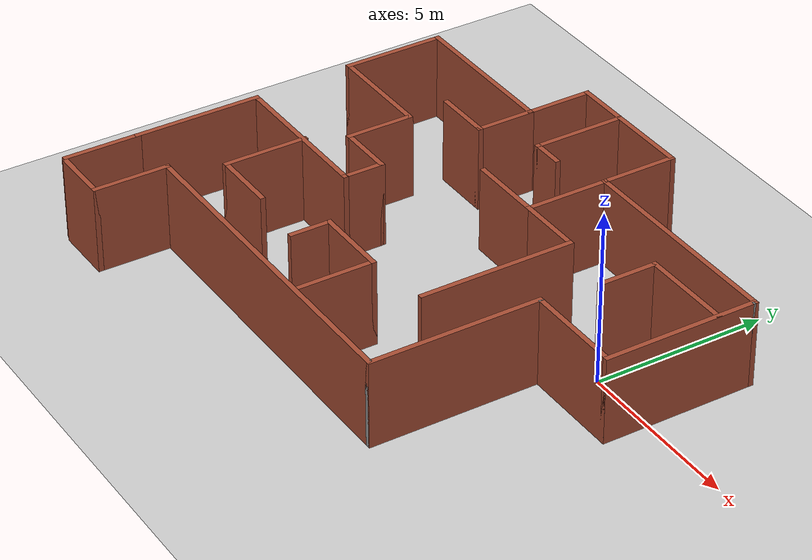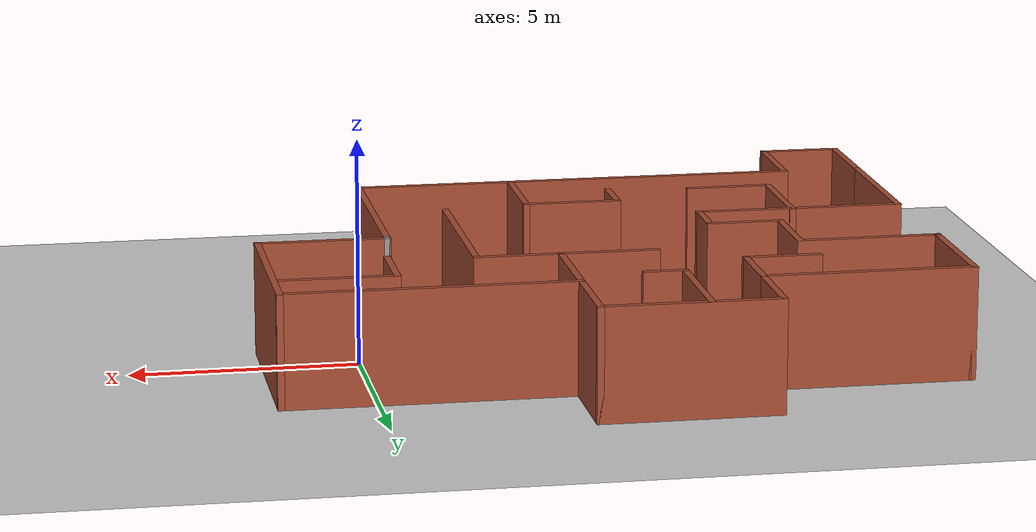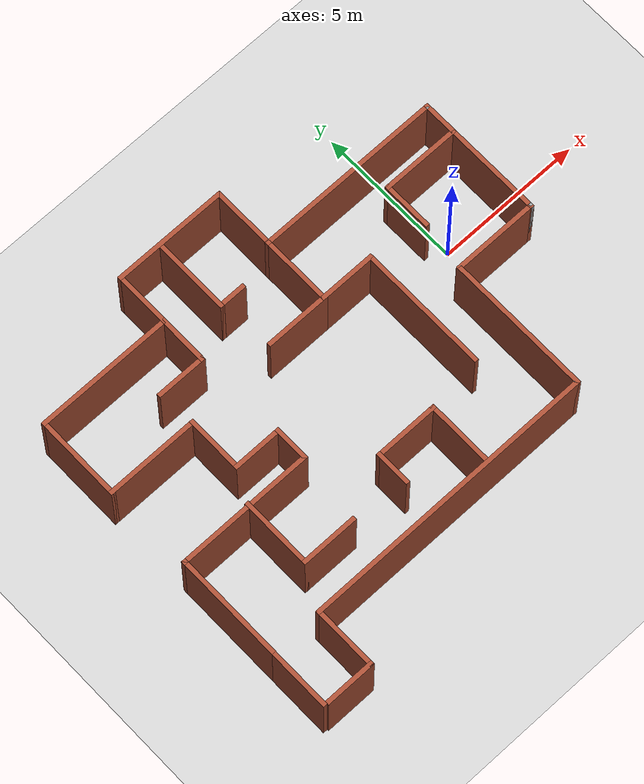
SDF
<sdf version="1.7">
 <world name="default">
  <light name="sun" type="directional">
   <pose>0 0 10 0 -0 0</pose>
   <diffuse>0.8 0.8 0.8 1</diffuse>
   <specular>0.2 0.2 0.2 1</specular>
   <attenuation>
    <range>1000</range>
    <constant>0.9</constant>
    <linear>0.01</linear>
    <quadratic>0.001</quadratic>
   </attenuation>
   <direction>-0.5 0.1 -0.9</direction>
   <spot><inner_angle>0</inner_angle><outer_angle>0</outer_angle><falloff>0</falloff></spot>
  </light>
  <model name="ground_plane">
   <static>1</static>
   <link name="link">
    <collision name="collision">
     <geometry><plane><normal>0 0 1</normal><size>100 100</size></plane></geometry>
     <surface>
      <contact><collide_bitmask>65535</collide_bitmask></contact>
      <friction><ode><mu>100</mu><mu2>50</mu2></ode></friction>
     </surface>
    </collision>
    <visual name="visual">
     <cast_shadows>0</cast_shadows>
     <geometry><plane><normal>0 0 1</normal><size>100 100</size></plane></geometry>
     <material>
      <script><uri>file://media/materials/scripts/gazebo.material</uri><name>Gazebo/Grey</name></script>
     </material>
    </visual>
   </link>
  </model>
  <gravity>0 0 -9.8</gravity>
  <magnetic_field>6e-06 2.3e-05 -4.2e-05</magnetic_field>
  <atmosphere type="adiabatic"/>
  <physics type="ode">
   <max_step_size>0.001</max_step_size>
   <real_time_factor>1</real_time_factor>
   <real_time_update_rate>1000</real_time_update_rate>
  </physics>
  <scene><ambient>0.4 0.4 0.4 1</ambient><background>0.7 0.7 0.7 1</background><shadows>1</shadows></scene>
  <spherical_coordinates>
   <surface_model>EARTH_WGS84</surface_model>
   <latitude_deg>0</latitude_deg>
   <longitude_deg>0</longitude_deg>
   <elevation>0</elevation>
   <heading_deg>0</heading_deg>
  </spherical_coordinates>
  <model name="world.world">
   <pose>-5.34695 -1.48497 0 0 -0 0</pose>
   <link name="Wall_10">
    <collision name="Wall_10_Collision">
     <geometry><box><size>3 0.15 2.5</size></box></geometry>
     <pose>0 0 1.25 0 -0 0</pose>
    </collision>
    <visual name="Wall_10_Visual">
     <pose>0 0 1.25 0 -0 0</pose>
     <geometry><box><size>3 0.15 2.5</size></box></geometry>
     <material>
      <script><uri>file://media/materials/scripts/gazebo.material</uri><name>Gazebo/Bricks</name></script>
      <ambient>1 1 1 1</ambient>
     </material>
     <meta><layer>0</layer></meta>
    </visual>
    <pose>5.975 0.25 0 0 -0 0</pose>
   </link>
   <link name="Wall_11">
    <collision name="Wall_11_Collision">
     <geometry><box><size>0.15 0.15 2.5</size></box></geometry>
     <pose>0 0 1.25 0 -0 0</pose>
    </collision>
    <visual name="Wall_11_Visual">
     <pose>0 0 1.25 0 -0 0</pose>
     <geometry><box><size>0.15 0.15 2.5</size></box></geometry>
     <material>
      <script><uri>file://media/materials/scripts/gazebo.material</uri><name>Gazebo/Grey</name></script>
      <ambient>1 1 1 1</ambient>
     </material>
     <meta><layer>0</layer></meta>
    </visual>
    <pose>7.4 0.25 0 0 -0 0</pose>
   </link>
   <link name="Wall_12">
    <collision name="Wall_12_Collision">
     <geometry><box><size>4.5 0.15 2.5</size></box></geometry>
     <pose>0 0 1.25 0 -0 0</pose>
    </collision>
    <visual name="Wall_12_Visual">
     <pose>0 0 1.25 0 -0 0</pose>
     <geometry><box><size>4.5 0.15 2.5</size></box></geometry>
     <material>
      <script><uri>file://media/materials/scripts/gazebo.material</uri><name>Gazebo/Bricks</name></script>
      <ambient>1 1 1 1</ambient>
     </material>
     <meta><layer>0</layer></meta>
    </visual>
    <pose>7.4 2.425 0 0 -0 1.5708</pose>
   </link>
   <link name="Wall_13">
    <collision name="Wall_13_Collision">
     <geometry><box><size>0.15 0.15 2.5</size></box></geometry>
     <pose>0 0 1.25 0 -0 0</pose>
    </collision>
    <visual name="Wall_13_Visual">
     <pose>0 0 1.25 0 -0 0</pose>
     <geometry><box><size>0.15 0.15 2.5</size></box></geometry>
     <material>
      <script><uri>file://media/materials/scripts/gazebo.material</uri><name>Gazebo/Grey</name></script>
      <ambient>1 1 1 1</ambient>
     </material>
     <meta><layer>0</layer></meta>
    </visual>
    <pose>7.4 4.6 0 0 -0 0</pose>
   </link>
   <link name="Wall_14">
    <collision name="Wall_14_Collision">
     <geometry><box><size>6.5 0.15 2.5</size></box></geometry>
     <pose>0 0 1.25 0 -0 0</pose>
    </collision>
    <visual name="Wall_14_Visual">
     <pose>0 0 1.25 0 -0 0</pose>
     <geometry><box><size>6.5 0.15 2.5</size></box></geometry>
     <material>
      <script><uri>file://media/materials/scripts/gazebo.material</uri><name>Gazebo/Bricks</name></script>
      <ambient>1 1 1 1</ambient>
     </material>
     <meta><layer>0</layer></meta>
    </visual>
    <pose>4.225 4.6 0 0 -0 3.14159</pose>
   </link>
   <link name="Wall_15">
    <collision name="Wall_15_Collision">
     <geometry><box><size>2.25 0.15 2.5</size></box></geometry>
     <pose>0 0 1.25 0 -0 0</pose>
    </collision>
    <visual name="Wall_15_Visual">
     <pose>0 0 1.25 0 -0 0</pose>
     <geometry><box><size>2.25 0.15 2.5</size></box></geometry>
     <material>
      <script><uri>file://media/materials/scripts/gazebo.material</uri><name>Gazebo/Bricks</name></script>
      <ambient>1 1 1 1</ambient>
     </material>
     <meta><layer>0</layer></meta>
    </visual>
    <pose>1.05 5.65 0 0 -0 1.5708</pose>
   </link>
   <link name="Wall_16">
    <collision name="Wall_16_Collision">
     <geometry><box><size>4 0.15 2.5</size></box></geometry>
     <pose>0 0 1.25 0 -0 0</pose>
    </collision>
    <visual name="Wall_16_Visual">
     <pose>0 0 1.25 0 -0 0</pose>
     <geometry><box><size>4 0.15 2.5</size></box></geometry>
     <material>
      <script><uri>file://media/materials/scripts/gazebo.material</uri><name>Gazebo/Bricks</name></script>
      <ambient>1 1 1 1</ambient>
     </material>
     <meta><layer>0</layer></meta>
    </visual>
    <pose>-0.875 6.7 0 0 -0 3.14159</pose>
   </link>
   <link name="Wall_17">
    <collision name="Wall_17_Collision">
     <geometry><box><size>2 0.15 2.5</size></box></geometry>
     <pose>0 0 1.25 0 -0 0</pose>
    </collision>
    <visual name="Wall_17_Visual">
     <pose>0 0 1.25 0 -0 0</pose>
     <geometry><box><size>2 0.15 2.5</size></box></geometry>
     <material>
      <script><uri>file://media/materials/scripts/gazebo.material</uri><name>Gazebo/Bricks</name></script>
      <ambient>1 1 1 1</ambient>
     </material>
     <meta><layer>0</layer></meta>
    </visual>
    <pose>-2.8 5.775 0 0 -0 -1.5708</pose>
   </link>
   <link name="Wall_18">
    <collision name="Wall_18_Collision">
     <geometry><box><size>4.75 0.15 2.5</size></box></geometry>
     <pose>0 0 1.25 0 -0 0</pose>
    </collision>
    <visual name="Wall_18_Visual">
     <pose>0 0 1.25 0 -0 0</pose>
     <geometry><box><size>4.75 0.15 2.5</size></box></geometry>
     <material>
      <script><uri>file://media/materials/scripts/gazebo.material</uri><name>Gazebo/Bricks</name></script>
      <ambient>1 1 1 1</ambient>
     </material>
     <meta><layer>0</layer></meta>
    </visual>
    <pose>-5.1 4.85 0 0 -0 3.14159</pose>
   </link>
   <link name="Wall_19">
    <collision name="Wall_19_Collision">
     <geometry><box><size>3 0.15 2.5</size></box></geometry>
     <pose>0 0 1.25 0 -0 0</pose>
    </collision>
    <visual name="Wall_19_Visual">
     <pose>0 0 1.25 0 -0 0</pose>
     <geometry><box><size>3 0.15 2.5</size></box></geometry>
     <material>
      <script><uri>file://media/materials/scripts/gazebo.material</uri><name>Gazebo/Bricks</name></script>
      <ambient>1 1 1 1</ambient>
     </material>
     <meta><layer>0</layer></meta>
    </visual>
    <pose>-7.4 3.425 0 0 -0 -1.5708</pose>
   </link>
   <link name="Wall_20">
    <collision name="Wall_20_Collision">
     <geometry><box><size>3.25 0.15 2.5</size></box></geometry>
     <pose>0 0 1.25 0 -0 0</pose>
    </collision>
    <visual name="Wall_20_Visual">
     <pose>0 0 1.25 0 -0 0</pose>
     <geometry><box><size>3.25 0.15 2.5</size></box></geometry>
     <material>
      <script><uri>file://media/materials/scripts/gazebo.material</uri><name>Gazebo/Bricks</name></script>
      <ambient>1 1 1 1</ambient>
     </material>
     <meta><layer>0</layer></meta>
    </visual>
    <pose>-5.85 2 0 0 -0 0</pose>
   </link>
   <link name="Wall_21">
    <collision name="Wall_21_Collision">
     <geometry><box><size>2 0.15 2.5</size></box></geometry>
     <pose>0 0 1.25 0 -0 0</pose>
    </collision>
    <visual name="Wall_21_Visual">
     <pose>0 0 1.25 0 -0 0</pose>
     <geometry><box><size>2 0.15 2.5</size></box></geometry>
     <material>
      <script><uri>file://media/materials/scripts/gazebo.material</uri><name>Gazebo/Bricks</name></script>
      <ambient>1 1 1 1</ambient>
     </material>
     <meta><layer>0</layer></meta>
    </visual>
    <pose>-4.3 1.075 0 0 -0 -1.5708</pose>
   </link>
   <link name="Wall_22">
    <collision name="Wall_22_Collision">
     <geometry><box><size>1.75 0.15 2.5</size></box></geometry>
     <pose>0 0 1.25 0 -0 0</pose>
    </collision>
    <visual name="Wall_22_Visual">
     <pose>0 0 1.25 0 -0 0</pose>
     <geometry><box><size>1.75 0.15 2.5</size></box></geometry>
     <material>
      <script><uri>file://media/materials/scripts/gazebo.material</uri><name>Gazebo/Bricks</name></script>
      <ambient>1 1 1 1</ambient>
     </material>
     <meta><layer>0</layer></meta>
    </visual>
    <pose>-3.5 0.15 0 0 -0 0</pose>
   </link>
   <link name="Wall_23">
    <collision name="Wall_23_Collision">
     <geometry><box><size>1.25 0.15 2.5</size></box></geometry>
     <pose>0 0 1.25 0 -0 0</pose>
    </collision>
    <visual name="Wall_23_Visual">
     <pose>0 0 1.25 0 -0 0</pose>
     <geometry><box><size>1.25 0.15 2.5</size></box></geometry>
     <material>
      <script><uri>file://media/materials/scripts/gazebo.material</uri><name>Gazebo/Bricks</name></script>
      <ambient>1 1 1 1</ambient>
     </material>
     <meta><layer>0</layer></meta>
    </visual>
    <pose>-2.7 -0.4 0 0 -0 -1.5708</pose>
   </link>
   <link name="Wall_24">
    <collision name="Wall_24_Collision">
     <geometry><box><size>4.75 0.15 2.5</size></box></geometry>
     <pose>0 0 1.25 0 -0 0</pose>
    </collision>
    <visual name="Wall_24_Visual">
     <pose>0 0 1.25 0 -0 0</pose>
     <geometry><box><size>4.75 0.15 2.5</size></box></geometry>
     <material>
      <script><uri>file://media/materials/scripts/gazebo.material</uri><name>Gazebo/Bricks</name></script>
      <ambient>1 1 1 1</ambient>
     </material>
     <meta><layer>0</layer></meta>
    </visual>
    <pose>-5 -0.95 0 0 -0 3.14159</pose>
   </link>
   <link name="Wall_25">
    <collision name="Wall_25_Collision">
     <geometry><box><size>3.75 0.15 2.5</size></box></geometry>
     <pose>0 0 1.25 0 -0 0</pose>
    </collision>
    <visual name="Wall_25_Visual">
     <pose>0 0 1.25 0 -0 0</pose>
     <geometry><box><size>3.75 0.15 2.5</size></box></geometry>
     <material>
      <script><uri>file://media/materials/scripts/gazebo.material</uri><name>Gazebo/Bricks</name></script>
      <ambient>1 1 1 1</ambient>
     </material>
     <meta><layer>0</layer></meta>
    </visual>
    <pose>-7.3 -2.75 0 0 -0 -1.5708</pose>
   </link>
   <link name="Wall_26">
    <collision name="Wall_26_Collision">
     <geometry><box><size>2.25 0.15 2.5</size></box></geometry>
     <pose>0 0 1.25 0 -0 0</pose>
    </collision>
    <visual name="Wall_26_Visual">
     <pose>0 0 1.25 0 -0 0</pose>
     <geometry><box><size>2.25 0.15 2.5</size></box></geometry>
     <material>
      <script><uri>file://media/materials/scripts/gazebo.material</uri><name>Gazebo/Bricks</name></script>
      <ambient>1 1 1 1</ambient>
     </material>
     <meta><layer>0</layer></meta>
    </visual>
    <pose>-7.3 -5.6 0 0 -0 -1.5708</pose>
   </link>
   <link name="Wall_28">
    <collision name="Wall_28_Collision">
     <geometry><box><size>2.25 0.15 2.5</size></box></geometry>
     <pose>0 0 1.25 0 -0 0</pose>
    </collision>
    <visual name="Wall_28_Visual">
     <pose>0 0 1.25 0 -0 0</pose>
     <geometry><box><size>2.25 0.15 2.5</size></box></geometry>
     <material>
      <script><uri>file://media/materials/scripts/gazebo.material</uri><name>Gazebo/Bricks</name></script>
      <ambient>1 1 1 1</ambient>
     </material>
     <meta><layer>0</layer></meta>
    </visual>
    <pose>-5.55 -5.65 0 0 -0 -1.5708</pose>
   </link>
   <link name="Wall_29">
    <collision name="Wall_29_Collision">
     <geometry><box><size>1.75 0.15 2.5</size></box></geometry>
     <pose>0 0 1.25 0 -0 0</pose>
    </collision>
    <visual name="Wall_29_Visual">
     <pose>0 0 1.25 0 -0 0</pose>
     <geometry><box><size>1.75 0.15 2.5</size></box></geometry>
     <material>
      <script><uri>file://media/materials/scripts/gazebo.material</uri><name>Gazebo/Bricks</name></script>
      <ambient>1 1 1 1</ambient>
     </material>
     <meta><layer>0</layer></meta>
    </visual>
    <pose>-6.35 -6.7 0 0 -0 3.14159</pose>
   </link>
   <link name="Wall_31">
    <collision name="Wall_31_Collision">
     <geometry><box><size>2.25 0.15 2.5</size></box></geometry>
     <pose>0 0 1.25 0 -0 0</pose>
    </collision>
    <visual name="Wall_31_Visual">
     <pose>0 0 1.25 0 -0 0</pose>
     <geometry><box><size>2.25 0.15 2.5</size></box></geometry>
     <material>
      <script><uri>file://media/materials/scripts/gazebo.material</uri><name>Gazebo/Bricks</name></script>
      <ambient>1 1 1 1</ambient>
     </material>
     <meta><layer>0</layer></meta>
    </visual>
    <pose>1.00599 -3.40582 0 0 -0 1.5708</pose>
   </link>
   <link name="Wall_32">
    <collision name="Wall_32_Collision">
     <geometry><box><size>2.25 0.15 2.5</size></box></geometry>
     <pose>0 0 1.25 0 -0 0</pose>
    </collision>
    <visual name="Wall_32_Visual">
     <pose>0 0 1.25 0 -0 0</pose>
     <geometry><box><size>2.25 0.15 2.5</size></box></geometry>
     <material>
      <script><uri>file://media/materials/scripts/gazebo.material</uri><name>Gazebo/Bricks</name></script>
      <ambient>1 1 1 1</ambient>
     </material>
     <meta><layer>0</layer></meta>
    </visual>
    <pose>-0.044013 -2.35582 0 0 -0 3.14159</pose>
   </link>
   <link name="Wall_33">
    <collision name="Wall_33_Collision">
     <geometry><box><size>1.25 0.15 2.5</size></box></geometry>
     <pose>0 0 1.25 0 -0 0</pose>
    </collision>
    <visual name="Wall_33_Visual">
     <pose>0 0 1.25 0 -0 0</pose>
     <geometry><box><size>1.25 0.15 2.5</size></box></geometry>
     <material>
      <script><uri>file://media/materials/scripts/gazebo.material</uri><name>Gazebo/Bricks</name></script>
      <ambient>1 1 1 1</ambient>
     </material>
     <meta><layer>0</layer></meta>
    </visual>
    <pose>-1.09401 -2.90582 0 0 -0 -1.5708</pose>
   </link>
   <link name="Wall_35">
    <collision name="Wall_35_Collision">
     <geometry><box><size>1.75 0.15 2.5</size></box></geometry>
     <pose>0 0 1.25 0 -0 0</pose>
    </collision>
    <visual name="Wall_35_Visual">
     <pose>0 0 1.25 0 -0 0</pose>
     <geometry><box><size>1.75 0.15 2.5</size></box></geometry>
     <material>
      <script><uri>file://media/materials/scripts/gazebo.material</uri><name>Gazebo/Bricks</name></script>
      <ambient>1 1 1 1</ambient>
     </material>
     <meta><layer>0</layer></meta>
    </visual>
    <pose>-2.8 4.05 0 0 -0 -1.5708</pose>
   </link>
   <link name="Wall_36">
    <collision name="Wall_36_Collision">
     <geometry><box><size>1.75 0.15 2.5</size></box></geometry>
     <pose>0 0 1.25 0 -0 0</pose>
    </collision>
    <visual name="Wall_36_Visual">
     <pose>0 0 1.25 0 -0 0</pose>
     <geometry><box><size>1.75 0.15 2.5</size></box></geometry>
     <material>
      <script><uri>file://media/materials/scripts/gazebo.material</uri><name>Gazebo/Bricks</name></script>
      <ambient>1 1 1 1</ambient>
     </material>
     <meta><layer>0</layer></meta>
    </visual>
    <pose>-3.6 3.25 0 0 -0 3.14159</pose>
   </link>
   <link name="Wall_38">
    <collision name="Wall_38_Collision">
     <geometry><box><size>2.75 0.15 2.5</size></box></geometry>
     <pose>0 0 1.25 0 -0 0</pose>
    </collision>
    <visual name="Wall_38_Visual">
     <pose>0 0 1.25 0 -0 0</pose>
     <geometry><box><size>2.75 0.15 2.5</size></box></geometry>
     <material>
      <script><uri>file://media/materials/scripts/gazebo.material</uri><name>Gazebo/Bricks</name></script>
      <ambient>1 1 1 1</ambient>
     </material>
     <meta><layer>0</layer></meta>
    </visual>
    <pose>6.08333 3.50178 0 0 -0 3.14159</pose>
   </link>
   <link name="Wall_40">
    <collision name="Wall_40_Collision">
     <geometry><box><size>1.75 0.15 2.5</size></box></geometry>
     <pose>0 0 1.25 0 -0 0</pose>
    </collision>
    <visual name="Wall_40_Visual">
     <pose>0 0 1.25 0 -0 0</pose>
     <geometry><box><size>1.75 0.15 2.5</size></box></geometry>
     <material>
      <script><uri>file://media/materials/scripts/gazebo.material</uri><name>Gazebo/Bricks</name></script>
      <ambient>1 1 1 1</ambient>
     </material>
     <meta><layer>0</layer></meta>
    </visual>
    <pose>4.78334 2.70178 0 0 -0 -1.5708</pose>
   </link>
   <link name="Wall_42">
    <collision name="Wall_42_Collision">
     <geometry><box><size>2.5 0.15 2.5</size></box></geometry>
     <pose>0 0 1.25 0 -0 0</pose>
    </collision>
    <visual name="Wall_42_Visual">
     <pose>0 0 1.25 0 -0 0</pose>
     <geometry><box><size>2.5 0.15 2.5</size></box></geometry>
     <material>
      <script><uri>file://media/materials/scripts/gazebo.material</uri><name>Gazebo/Bricks</name></script>
      <ambient>1 1 1 1</ambient>
     </material>
     <meta><layer>0</layer></meta>
    </visual>
    <pose>1.05 3.425 0 0 -0 -1.5708</pose>
   </link>
   <link name="Wall_43">
    <collision name="Wall_43_Collision">
     <geometry><box><size>2 0.15 2.5</size></box></geometry>
     <pose>0 0 1.25 0 -0 0</pose>
    </collision>
    <visual name="Wall_43_Visual">
     <pose>0 0 1.25 0 -0 0</pose>
     <geometry><box><size>2 0.15 2.5</size></box></geometry>
     <material>
      <script><uri>file://media/materials/scripts/gazebo.material</uri><name>Gazebo/Bricks</name></script>
      <ambient>1 1 1 1</ambient>
     </material>
     <meta><layer>0</layer></meta>
    </visual>
    <pose>1.975 2.25 0 0 -0 0</pose>
   </link>
   <link name="Wall_44">
    <collision name="Wall_44_Collision">
     <geometry><box><size>4.5 0.15 2.5</size></box></geometry>
     <pose>0 0 1.25 0 -0 0</pose>
    </collision>
    <visual name="Wall_44_Visual">
     <pose>0 0 1.25 0 -0 0</pose>
     <geometry><box><size>4.5 0.15 2.5</size></box></geometry>
     <material>
      <script><uri>file://media/materials/scripts/gazebo.material</uri><name>Gazebo/Bricks</name></script>
      <ambient>1 1 1 1</ambient>
     </material>
     <meta><layer>0</layer></meta>
    </visual>
    <pose>2.9 0.075 0 0 -0 -1.5708</pose>
   </link>
   <link name="Wall_46">
    <collision name="Wall_46_Collision">
     <geometry><box><size>2.5 0.15 2.5</size></box></geometry>
     <pose>0 0 1.25 0 -0 0</pose>
    </collision>
    <visual name="Wall_46_Visual">
     <pose>0 0 1.25 0 -0 0</pose>
     <geometry><box><size>2.5 0.15 2.5</size></box></geometry>
     <material>
      <script><uri>file://media/materials/scripts/gazebo.material</uri><name>Gazebo/Bricks</name></script>
      <ambient>1 1 1 1</ambient>
     </material>
     <meta><layer>0</layer></meta>
    </visual>
    <pose>-4.83302 -2.07762 0 0 -0 -1.5708</pose>
   </link>
   <link name="Wall_47">
    <collision name="Wall_47_Collision">
     <geometry><box><size>2 0.15 2.5</size></box></geometry>
     <pose>0 0 1.25 0 -0 0</pose>
    </collision>
    <visual name="Wall_47_Visual">
     <pose>0 0 1.25 0 -0 0</pose>
     <geometry><box><size>2 0.15 2.5</size></box></geometry>
     <material>
      <script><uri>file://media/materials/scripts/gazebo.material</uri><name>Gazebo/Bricks</name></script>
      <ambient>1 1 1 1</ambient>
     </material>
     <meta><layer>0</layer></meta>
    </visual>
    <pose>-3.90802 -3.25262 0 0 -0 0</pose>
   </link>
   <link name="Wall_49">
    <collision name="Wall_49_Collision">
     <geometry><box><size>2.25 0.15 2.5</size></box></geometry>
     <pose>0 0 1.25 0 -0 0</pose>
    </collision>
    <visual name="Wall_49_Visual">
     <pose>0 0 1.25 0 -0 0</pose>
     <geometry><box><size>2.25 0.15 2.5</size></box></geometry>
     <material>
      <script><uri>file://media/materials/scripts/gazebo.material</uri><name>Gazebo/Bricks</name></script>
      <ambient>1 1 1 1</ambient>
     </material>
     <meta><layer>0</layer></meta>
    </visual>
    <pose>-0 2.25 0 0 -0 3.14159</pose>
   </link>
   <link name="Wall_51">
    <collision name="Wall_51_Collision">
     <geometry><box><size>2.75 0.15 2.5</size></box></geometry>
     <pose>0 0 1.25 0 -0 0</pose>
    </collision>
    <visual name="Wall_51_Visual">
     <pose>0 0 1.25 0 -0 0</pose>
     <geometry><box><size>2.75 0.15 2.5</size></box></geometry>
     <material>
      <script><uri>file://media/materials/scripts/gazebo.material</uri><name>Gazebo/Bricks</name></script>
      <ambient>1 1 1 1</ambient>
     </material>
     <meta><layer>0</layer></meta>
    </visual>
    <pose>-1.28075 5.39458 0 0 -0 -1.5708</pose>
   </link>
   <link name="Wall_52">
    <collision name="Wall_52_Collision">
     <geometry><box><size>1 0.15 2.5</size></box></geometry>
     <pose>0 0 1.25 0 -0 0</pose>
    </collision>
    <visual name="Wall_52_Visual">
     <pose>0 0 1.25 0 -0 0</pose>
     <geometry><box><size>1 0.15 2.5</size></box></geometry>
     <material>
      <script><uri>file://media/materials/scripts/gazebo.material</uri><name>Gazebo/Bricks</name></script>
      <ambient>1 1 1 1</ambient>
     </material>
     <meta><layer>0</layer></meta>
    </visual>
    <pose>-0.855749 4.09458 0 0 -0 0</pose>
   </link>
   <link name="Wall_6">
    <collision name="Wall_6_Collision">
     <geometry><box><size>10.25 0.15 2.5</size></box></geometry>
     <pose>0 0 1.25 0 -0 0</pose>
    </collision>
    <visual name="Wall_6_Visual">
     <pose>0 0 1.25 0 -0 0</pose>
     <geometry><box><size>10.25 0.15 2.5</size></box></geometry>
     <material>
      <script><uri>file://media/materials/scripts/gazebo.material</uri><name>Gazebo/Bricks</name></script>
      <ambient>1 1 1 1</ambient>
     </material>
     <meta><layer>0</layer></meta>
    </visual>
    <pose>-0.5 -4.6 0 0 -0 0</pose>
   </link>
   <link name="Wall_7">
    <collision name="Wall_7_Collision">
     <geometry><box><size>0.15 0.15 2.5</size></box></geometry>
     <pose>0 0 1.25 0 -0 0</pose>
    </collision>
    <visual name="Wall_7_Visual">
     <pose>0 0 1.25 0 -0 0</pose>
     <geometry><box><size>0.15 0.15 2.5</size></box></geometry>
     <material>
      <script><uri>file://media/materials/scripts/gazebo.material</uri><name>Gazebo/Grey</name></script>
      <ambient>1 1 1 1</ambient>
     </material>
     <meta><layer>0</layer></meta>
    </visual>
    <pose>4.55 -4.6 0 0 -0 0</pose>
   </link>
   <link name="Wall_8">
    <collision name="Wall_8_Collision">
     <geometry><box><size>5 0.15 2.5</size></box></geometry>
     <pose>0 0 1.25 0 -0 0</pose>
    </collision>
    <visual name="Wall_8_Visual">
     <pose>0 0 1.25 0 -0 0</pose>
     <geometry><box><size>5 0.15 2.5</size></box></geometry>
     <material>
      <script><uri>file://media/materials/scripts/gazebo.material</uri><name>Gazebo/Bricks</name></script>
      <ambient>1 1 1 1</ambient>
     </material>
     <meta><layer>0</layer></meta>
    </visual>
    <pose>4.55 -2.175 0 0 -0 1.5708</pose>
   </link>
   <link name="Wall_9">
    <collision name="Wall_9_Collision">
     <geometry><box><size>0.15 0.15 2.5</size></box></geometry>
     <pose>0 0 1.25 0 -0 0</pose>
    </collision>
    <visual name="Wall_9_Visual">
     <pose>0 0 1.25 0 -0 0</pose>
     <geometry><box><size>0.15 0.15 2.5</size></box></geometry>
     <material>
      <script><uri>file://media/materials/scripts/gazebo.material</uri><name>Gazebo/Grey</name></script>
      <ambient>1 1 1 1</ambient>
     </material>
     <meta><layer>0</layer></meta>
    </visual>
    <pose>4.55 0.25 0 0 -0 0</pose>
   </link>
   <static>1</static>
  </model>
 </world>
</sdf>
